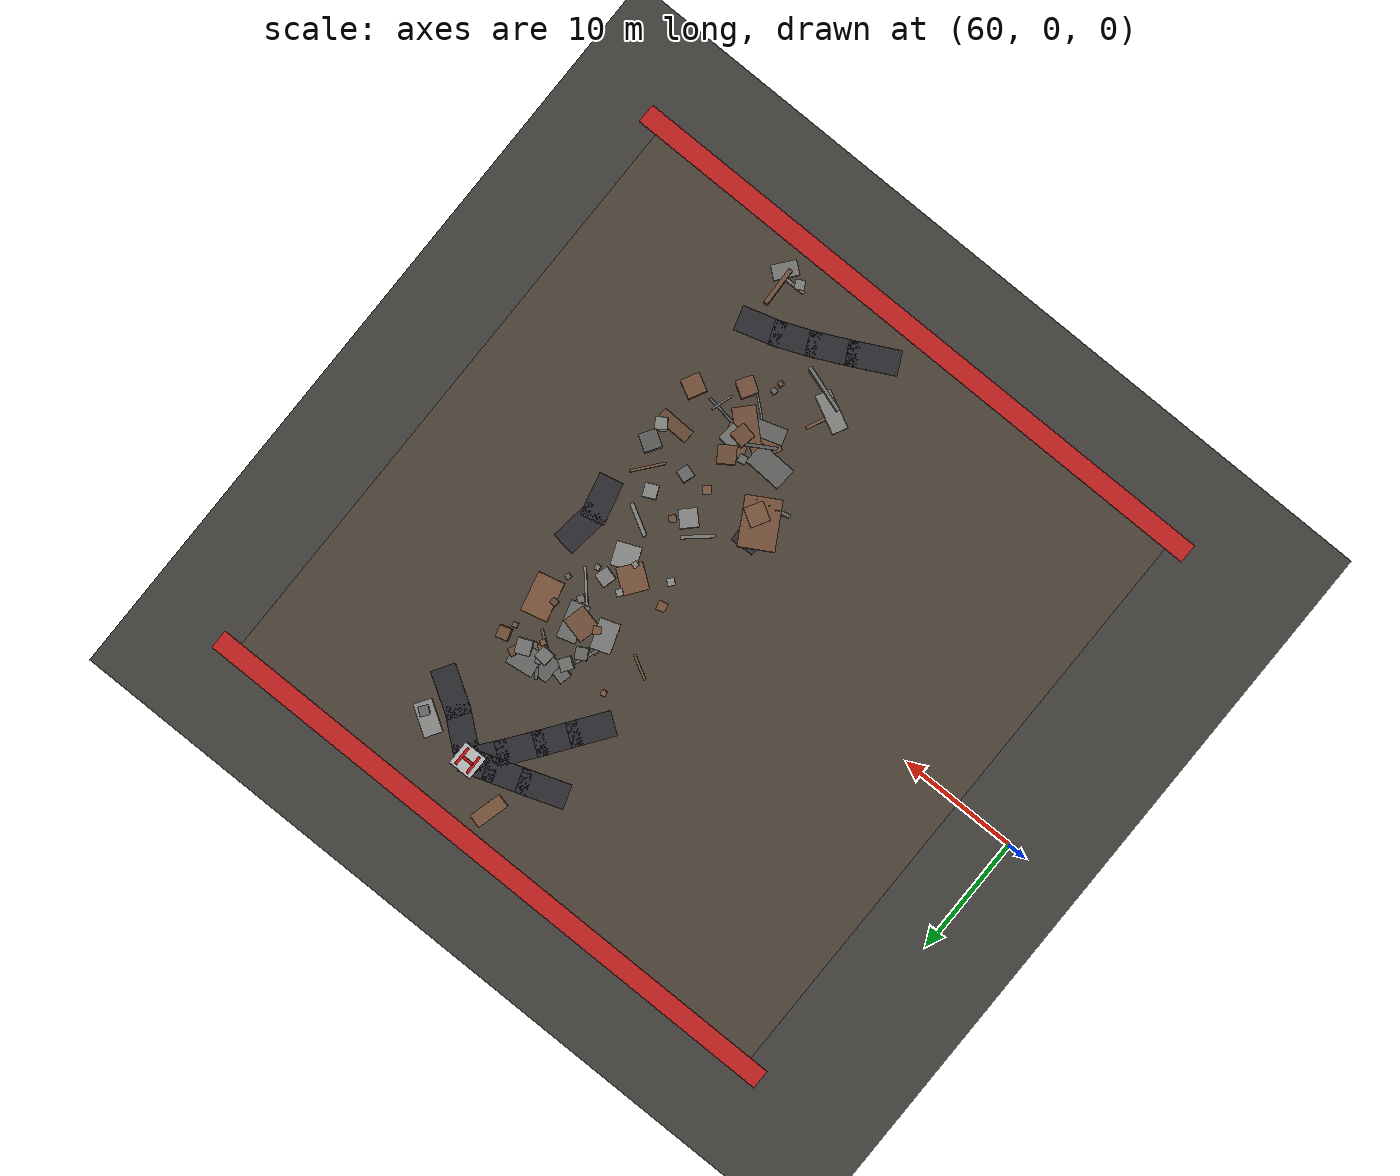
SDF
<sdf version="1.6">
 <world name="navitas_arena">
  <model name="ground_plane">
   <static>true</static>
   <link name="link">
    <collision name="collision">
     <geometry><plane><normal>0 0 1</normal><size>400 400</size></plane></geometry>
     <surface><friction><ode><mu>0.800</mu><mu2>0.800</mu2></ode></friction></surface>
    </collision>
    <visual name="visual">
     <cast_shadows>false</cast_shadows>
     <geometry><plane><normal>0 0 1</normal><size>400 400</size></plane></geometry>
     <material><ambient>0.300 0.290 0.270 1</ambient><diffuse>0.300 0.290 0.270 1</diffuse></material>
    </visual>
   </link>
  </model>
  <model name="gd_zor">
   <static>true</static>
   <pose>90.000 0.000 0.010 0 0 0.000</pose>
   <link name="link">
    <collision name="col"><geometry><box><size>50.000 50.000 0.020</size></box></geometry></collision>
    <visual name="vis">
     <geometry><box><size>50.000 50.000 0.020</size></box></geometry>
     <material><ambient>0.34 0.30 0.25 1</ambient><diffuse>0.34 0.30 0.25 1</diffuse></material>
    </visual>
   </link>
  </model>
  <model name="brd_zor_N">
   <static>true</static>
   <pose>90.000 25.800 0.040 0 0 0.000</pose>
   <link name="link">
    <collision name="col"><geometry><box><size>53.200 1.600 0.080</size></box></geometry></collision>
    <visual name="vis">
     <geometry><box><size>53.200 1.600 0.080</size></box></geometry>
     <material><ambient>0.85 0.15 0.15 1</ambient><diffuse>0.85 0.15 0.15 1</diffuse></material>
    </visual>
   </link>
  </model>
  <model name="brd_zor_S">
   <static>true</static>
   <pose>90.000 -25.800 0.040 0 0 0.000</pose>
   <link name="link">
    <collision name="col"><geometry><box><size>53.200 1.600 0.080</size></box></geometry></collision>
    <visual name="vis">
     <geometry><box><size>53.200 1.600 0.080</size></box></geometry>
     <material><ambient>0.85 0.15 0.15 1</ambient><diffuse>0.85 0.15 0.15 1</diffuse></material>
    </visual>
   </link>
  </model>
  <model name="road_zor_1_21">
   <static>true</static>
   <pose>90.234 19.029 0.040 0 0 0.337</pose>
   <link name="link">
    <collision name="col"><geometry><box><size>3.938 2.000 0.020</size></box></geometry></collision>
    <visual name="vis">
     <geometry><box><size>3.938 2.000 0.020</size></box></geometry>
     <material><ambient>0.20 0.20 0.22 1</ambient><diffuse>0.20 0.20 0.22 1</diffuse></material>
    </visual>
   </link>
  </model>
  <model name="road_zor_1_22">
   <static>true</static>
   <pose>92.952 19.963 0.040 0 0 0.324</pose>
   <link name="link">
    <collision name="col"><geometry><box><size>3.610 2.000 0.020</size></box></geometry></collision>
    <visual name="vis">
     <geometry><box><size>3.610 2.000 0.020</size></box></geometry>
     <material><ambient>0.20 0.20 0.22 1</ambient><diffuse>0.20 0.20 0.22 1</diffuse></material>
    </visual>
   </link>
  </model>
  <model name="road_zor_1_23">
   <static>true</static>
   <pose>95.131 20.697 0.040 0 0 0.326</pose>
   <link name="link">
    <collision name="col"><geometry><box><size>2.789 2.000 0.020</size></box></geometry></collision>
    <visual name="vis">
     <geometry><box><size>2.789 2.000 0.020</size></box></geometry>
     <material><ambient>0.20 0.20 0.22 1</ambient><diffuse>0.20 0.20 0.22 1</diffuse></material>
    </visual>
   </link>
  </model>
  <model name="road_zor_2_5">
   <static>true</static>
   <pose>90.161 -6.600 0.040 0 0 1.614</pose>
   <link name="link">
    <collision name="col"><geometry><box><size>3.703 2.000 0.020</size></box></geometry></collision>
    <visual name="vis">
     <geometry><box><size>3.703 2.000 0.020</size></box></geometry>
     <material><ambient>0.20 0.20 0.22 1</ambient><diffuse>0.20 0.20 0.22 1</diffuse></material>
    </visual>
   </link>
  </model>
  <model name="road_zor_2_13">
   <static>true</static>
   <pose>90.248 13.228 0.040 0 0 0.948</pose>
   <link name="link">
    <collision name="col"><geometry><box><size>3.601 2.000 0.020</size></box></geometry></collision>
    <visual name="vis">
     <geometry><box><size>3.601 2.000 0.020</size></box></geometry>
     <material><ambient>0.20 0.20 0.22 1</ambient><diffuse>0.20 0.20 0.22 1</diffuse></material>
    </visual>
   </link>
  </model>
  <model name="road_zor_2_14">
   <static>true</static>
   <pose>91.811 15.414 0.040 0 0 0.953</pose>
   <link name="link">
    <collision name="col"><geometry><box><size>3.574 2.000 0.020</size></box></geometry></collision>
    <visual name="vis">
     <geometry><box><size>3.574 2.000 0.020</size></box></geometry>
     <material><ambient>0.20 0.20 0.22 1</ambient><diffuse>0.20 0.20 0.22 1</diffuse></material>
    </visual>
   </link>
  </model>
  <model name="road_zor_2_15">
   <static>true</static>
   <pose>93.469 17.687 0.040 0 0 0.929</pose>
   <link name="link">
    <collision name="col"><geometry><box><size>3.855 2.000 0.020</size></box></geometry></collision>
    <visual name="vis">
     <geometry><box><size>3.855 2.000 0.020</size></box></geometry>
     <material><ambient>0.20 0.20 0.22 1</ambient><diffuse>0.20 0.20 0.22 1</diffuse></material>
    </visual>
   </link>
  </model>
  <model name="road_zor_2_16">
   <static>true</static>
   <pose>95.190 19.935 0.040 0 0 0.905</pose>
   <link name="link">
    <collision name="col"><geometry><box><size>3.607 2.000 0.020</size></box></geometry></collision>
    <visual name="vis">
     <geometry><box><size>3.607 2.000 0.020</size></box></geometry>
     <material><ambient>0.20 0.20 0.22 1</ambient><diffuse>0.20 0.20 0.22 1</diffuse></material>
    </visual>
   </link>
  </model>
  <model name="road_zor_3_0">
   <static>true</static>
   <pose>91.412 -22.266 0.040 0 0 0.474</pose>
   <link name="link">
    <collision name="col"><geometry><box><size>4.119 2.000 0.020</size></box></geometry></collision>
    <visual name="vis">
     <geometry><box><size>4.119 2.000 0.020</size></box></geometry>
     <material><ambient>0.20 0.20 0.22 1</ambient><diffuse>0.20 0.20 0.22 1</diffuse></material>
    </visual>
   </link>
  </model>
  <model name="road_zor_3_1">
   <static>true</static>
   <pose>94.240 -20.856 0.040 0 0 0.450</pose>
   <link name="link">
    <collision name="col"><geometry><box><size>4.001 2.000 0.020</size></box></geometry></collision>
    <visual name="vis">
     <geometry><box><size>4.001 2.000 0.020</size></box></geometry>
     <material><ambient>0.20 0.20 0.22 1</ambient><diffuse>0.20 0.20 0.22 1</diffuse></material>
    </visual>
   </link>
  </model>
  <model name="road_zor_3_2">
   <static>true</static>
   <pose>96.946 -19.642 0.040 0 0 0.391</pose>
   <link name="link">
    <collision name="col"><geometry><box><size>3.733 2.000 0.020</size></box></geometry></collision>
    <visual name="vis">
     <geometry><box><size>3.733 2.000 0.020</size></box></geometry>
     <material><ambient>0.20 0.20 0.22 1</ambient><diffuse>0.20 0.20 0.22 1</diffuse></material>
    </visual>
   </link>
  </model>
  <model name="road_zor_3_3">
   <static>true</static>
   <pose>99.575 -18.702 0.040 0 0 0.294</pose>
   <link name="link">
    <collision name="col"><geometry><box><size>3.657 2.000 0.020</size></box></geometry></collision>
    <visual name="vis">
     <geometry><box><size>3.657 2.000 0.020</size></box></geometry>
     <material><ambient>0.20 0.20 0.22 1</ambient><diffuse>0.20 0.20 0.22 1</diffuse></material>
    </visual>
   </link>
  </model>
  <model name="road_zor_3_12">
   <static>true</static>
   <pose>100.682 -0.883 0.040 0 0 1.804</pose>
   <link name="link">
    <collision name="col"><geometry><box><size>3.538 2.000 0.020</size></box></geometry></collision>
    <visual name="vis">
     <geometry><box><size>3.538 2.000 0.020</size></box></geometry>
     <material><ambient>0.20 0.20 0.22 1</ambient><diffuse>0.20 0.20 0.22 1</diffuse></material>
    </visual>
   </link>
  </model>
  <model name="road_zor_3_13">
   <static>true</static>
   <pose>100.561 1.800 0.040 0 0 1.441</pose>
   <link name="link">
    <collision name="col"><geometry><box><size>3.724 2.000 0.020</size></box></geometry></collision>
    <visual name="vis">
     <geometry><box><size>3.724 2.000 0.020</size></box></geometry>
     <material><ambient>0.20 0.20 0.22 1</ambient><diffuse>0.20 0.20 0.22 1</diffuse></material>
    </visual>
   </link>
  </model>
  <model name="road_zor_3_21">
   <static>true</static>
   <pose>100.322 17.729 0.040 0 0 2.587</pose>
   <link name="link">
    <collision name="col"><geometry><box><size>3.931 2.000 0.020</size></box></geometry></collision>
    <visual name="vis">
     <geometry><box><size>3.931 2.000 0.020</size></box></geometry>
     <material><ambient>0.20 0.20 0.22 1</ambient><diffuse>0.20 0.20 0.22 1</diffuse></material>
    </visual>
   </link>
  </model>
  <model name="road_zor_3_22">
   <static>true</static>
   <pose>97.890 19.461 0.040 0 0 2.457</pose>
   <link name="link">
    <collision name="col"><geometry><box><size>3.851 2.000 0.020</size></box></geometry></collision>
    <visual name="vis">
     <geometry><box><size>3.851 2.000 0.020</size></box></geometry>
     <material><ambient>0.20 0.20 0.22 1</ambient><diffuse>0.20 0.20 0.22 1</diffuse></material>
    </visual>
   </link>
  </model>
  <model name="road_zor_3_23">
   <static>true</static>
   <pose>96.387 20.697 0.040 0 0 2.444</pose>
   <link name="link">
    <collision name="col"><geometry><box><size>1.842 2.000 0.020</size></box></geometry></collision>
    <visual name="vis">
     <geometry><box><size>1.842 2.000 0.020</size></box></geometry>
     <material><ambient>0.20 0.20 0.22 1</ambient><diffuse>0.20 0.20 0.22 1</diffuse></material>
    </visual>
   </link>
  </model>
  <model name="blk_zor_2_0_0">
   <static>true</static>
   <pose>90.171 -7.022 0.600 0 0 2.094</pose>
   <link name="link">
    <collision name="col"><geometry><box><size>4.004 2.908 1.200</size></box></geometry></collision>
    <visual name="vis">
     <geometry><box><size>4.004 2.908 1.200</size></box></geometry>
     <material><ambient>0.52 0.36 0.26 1</ambient><diffuse>0.52 0.36 0.26 1</diffuse></material>
    </visual>
   </link>
  </model>
  <model name="blk_zor_2_0_2">
   <static>true</static>
   <pose>90.768 -7.376 0.742 0 0 2.613</pose>
   <link name="link">
    <collision name="col"><geometry><box><size>1.595 1.595 1.484</size></box></geometry></collision>
    <visual name="vis">
     <geometry><box><size>1.595 1.595 1.484</size></box></geometry>
     <material><ambient>0.54 0.38 0.27 1</ambient><diffuse>0.54 0.38 0.27 1</diffuse></material>
    </visual>
   </link>
  </model>
  <model name="blk_zor_2_0_5">
   <static>true</static>
   <pose>90.104 -8.480 0.600 0 0 0.259</pose>
   <link name="link">
    <collision name="col"><geometry><box><size>2.861 0.260 1.200</size></box></geometry></collision>
    <visual name="vis">
     <geometry><box><size>2.861 0.260 1.200</size></box></geometry>
     <material><ambient>0.45 0.45 0.44 1</ambient><diffuse>0.45 0.45 0.44 1</diffuse></material>
    </visual>
   </link>
  </model>
  <model name="deb_zor_0">
   <static>true</static>
   <pose>96.494 11.065 0.855 0 0 1.478</pose>
   <link name="link">
    <collision name="col"><geometry><box><size>1.065 1.065 1.710</size></box></geometry></collision>
    <visual name="vis">
     <geometry><box><size>1.065 1.065 1.710</size></box></geometry>
     <material><ambient>0.51 0.51 0.50 1</ambient><diffuse>0.51 0.51 0.50 1</diffuse></material>
    </visual>
   </link>
  </model>
  <model name="deb_zor_12">
   <static>true</static>
   <pose>93.525 7.361 0.093 0 0 1.458</pose>
   <link name="link">
    <collision name="col"><geometry><box><size>2.654 0.292 0.185</size></box></geometry></collision>
    <visual name="vis">
     <geometry><box><size>2.654 0.292 0.185</size></box></geometry>
     <material><ambient>0.55 0.38 0.27 1</ambient><diffuse>0.55 0.38 0.27 1</diffuse></material>
    </visual>
   </link>
  </model>
  <model name="deb_zor_15">
   <static>true</static>
   <pose>94.264 -9.990 0.193 0 0 1.758</pose>
   <link name="link">
    <collision name="col"><geometry><box><size>0.663 0.663 0.386</size></box></geometry></collision>
    <visual name="vis">
     <geometry><box><size>0.663 0.663 0.386</size></box></geometry>
     <material><ambient>0.46 0.46 0.45 1</ambient><diffuse>0.46 0.46 0.45 1</diffuse></material>
    </visual>
   </link>
  </model>
  <model name="deb_zor_17">
   <static>true</static>
   <pose>91.964 2.572 0.322 0 0 1.799</pose>
   <link name="link">
    <collision name="col"><geometry><box><size>0.721 0.721 0.645</size></box></geometry></collision>
    <visual name="vis">
     <geometry><box><size>0.721 0.721 0.645</size></box></geometry>
     <material><ambient>0.52 0.36 0.26 1</ambient><diffuse>0.52 0.36 0.26 1</diffuse></material>
    </visual>
   </link>
  </model>
  <model name="deb_zor_29">
   <static>true</static>
   <pose>93.202 -3.282 0.162 0 0 0.721</pose>
   <link name="link">
    <collision name="col"><geometry><box><size>2.700 0.278 0.323</size></box></geometry></collision>
    <visual name="vis">
     <geometry><box><size>2.700 0.278 0.323</size></box></geometry>
     <material><ambient>0.53 0.53 0.52 1</ambient><diffuse>0.53 0.53 0.52 1</diffuse></material>
    </visual>
   </link>
  </model>
  <model name="deb_zor_30">
   <static>true</static>
   <pose>100.537 -6.620 0.896 0 0 2.572</pose>
   <link name="link">
    <collision name="col"><geometry><box><size>1.440 1.440 1.793</size></box></geometry></collision>
    <visual name="vis">
     <geometry><box><size>1.440 1.440 1.793</size></box></geometry>
     <material><ambient>0.41 0.41 0.40 1</ambient><diffuse>0.41 0.41 0.40 1</diffuse></material>
    </visual>
   </link>
  </model>
  <model name="deb_zor_40">
   <static>true</static>
   <pose>95.846 -13.969 0.117 0 0 2.423</pose>
   <link name="link">
    <collision name="col"><geometry><box><size>2.237 0.153 0.233</size></box></geometry></collision>
    <visual name="vis">
     <geometry><box><size>2.237 0.153 0.233</size></box></geometry>
     <material><ambient>0.51 0.51 0.50 1</ambient><diffuse>0.51 0.51 0.50 1</diffuse></material>
    </visual>
   </link>
  </model>
  <model name="deb_zor_45">
   <static>true</static>
   <pose>92.608 0.690 0.208 0 0 2.422</pose>
   <link name="link">
    <collision name="col"><geometry><box><size>0.591 0.591 0.417</size></box></geometry></collision>
    <visual name="vis">
     <geometry><box><size>0.591 0.591 0.417</size></box></geometry>
     <material><ambient>0.61 0.61 0.59 1</ambient><diffuse>0.61 0.61 0.59 1</diffuse></material>
    </visual>
   </link>
  </model>
  <model name="deb_zor_46">
   <static>true</static>
   <pose>97.647 3.338 0.336 0 0 1.789</pose>
   <link name="link">
    <collision name="col"><geometry><box><size>0.422 0.422 0.673</size></box></geometry></collision>
    <visual name="vis">
     <geometry><box><size>0.422 0.422 0.673</size></box></geometry>
     <material><ambient>0.51 0.51 0.50 1</ambient><diffuse>0.51 0.51 0.50 1</diffuse></material>
    </visual>
   </link>
  </model>
  <model name="deb_zor_51">
   <static>true</static>
   <pose>99.794 -22.726 0.151 0 0 0.012</pose>
   <link name="link">
    <collision name="col"><geometry><box><size>2.329 0.249 0.302</size></box></geometry></collision>
    <visual name="vis">
     <geometry><box><size>2.329 0.249 0.302</size></box></geometry>
     <material><ambient>0.56 0.56 0.55 1</ambient><diffuse>0.56 0.56 0.55 1</diffuse></material>
    </visual>
   </link>
  </model>
  <model name="deb_zor_64">
   <static>true</static>
   <pose>95.522 -10.784 0.170 0 0 1.992</pose>
   <link name="link">
    <collision name="col"><geometry><box><size>2.480 1.759 0.341</size></box></geometry></collision>
    <visual name="vis">
     <geometry><box><size>2.480 1.759 0.341</size></box></geometry>
     <material><ambient>0.49 0.35 0.25 1</ambient><diffuse>0.49 0.35 0.25 1</diffuse></material>
    </visual>
   </link>
  </model>
  <model name="deb_zor_65">
   <static>true</static>
   <pose>90.374 7.221 0.185 0 0 2.642</pose>
   <link name="link">
    <collision name="col"><geometry><box><size>2.105 0.200 0.370</size></box></geometry></collision>
    <visual name="vis">
     <geometry><box><size>2.105 0.200 0.370</size></box></geometry>
     <material><ambient>0.55 0.38 0.27 1</ambient><diffuse>0.55 0.38 0.27 1</diffuse></material>
    </visual>
   </link>
  </model>
  <model name="deb_zor_67">
   <static>true</static>
   <pose>92.327 -10.892 0.160 0 0 3.099</pose>
   <link name="link">
    <collision name="col"><geometry><box><size>3.197 1.860 0.319</size></box></geometry></collision>
    <visual name="vis">
     <geometry><box><size>3.197 1.860 0.319</size></box></geometry>
     <material><ambient>0.43 0.43 0.42 1</ambient><diffuse>0.43 0.43 0.42 1</diffuse></material>
    </visual>
   </link>
  </model>
  <model name="deb_zor_72">
   <static>true</static>
   <pose>93.929 8.944 0.177 0 0 1.185</pose>
   <link name="link">
    <collision name="col"><geometry><box><size>2.383 0.234 0.353</size></box></geometry></collision>
    <visual name="vis">
     <geometry><box><size>2.383 0.234 0.353</size></box></geometry>
     <material><ambient>0.47 0.47 0.46 1</ambient><diffuse>0.47 0.47 0.46 1</diffuse></material>
    </visual>
   </link>
  </model>
  <model name="deb_zor_73">
   <static>true</static>
   <pose>91.401 -16.185 0.127 0 0 1.139</pose>
   <link name="link">
    <collision name="col"><geometry><box><size>2.882 0.239 0.253</size></box></geometry></collision>
    <visual name="vis">
     <geometry><box><size>2.882 0.239 0.253</size></box></geometry>
     <material><ambient>0.55 0.38 0.27 1</ambient><diffuse>0.55 0.38 0.27 1</diffuse></material>
    </visual>
   </link>
  </model>
  <model name="deb_zor_75">
   <static>true</static>
   <pose>96.974 10.389 0.157 0 0 2.505</pose>
   <link name="link">
    <collision name="col"><geometry><box><size>2.510 0.212 0.314</size></box></geometry></collision>
    <visual name="vis">
     <geometry><box><size>2.510 0.212 0.314</size></box></geometry>
     <material><ambient>0.42 0.42 0.41 1</ambient><diffuse>0.42 0.42 0.41 1</diffuse></material>
    </visual>
   </link>
  </model>
  <model name="deb_zor_84">
   <static>true</static>
   <pose>93.888 7.037 0.188 0 0 1.909</pose>
   <link name="link">
    <collision name="col"><geometry><box><size>2.426 1.655 0.376</size></box></geometry></collision>
    <visual name="vis">
     <geometry><box><size>2.426 1.655 0.376</size></box></geometry>
     <material><ambient>0.54 0.54 0.53 1</ambient><diffuse>0.54 0.54 0.53 1</diffuse></material>
    </visual>
   </link>
  </model>
  <model name="deb_zor_86">
   <static>true</static>
   <pose>94.429 9.169 0.699 0 0 0.501</pose>
   <link name="link">
    <collision name="col"><geometry><box><size>0.969 0.969 1.398</size></box></geometry></collision>
    <visual name="vis">
     <geometry><box><size>0.969 0.969 1.398</size></box></geometry>
     <material><ambient>0.45 0.45 0.44 1</ambient><diffuse>0.45 0.45 0.44 1</diffuse></material>
    </visual>
   </link>
  </model>
  <model name="deb_zor_89">
   <static>true</static>
   <pose>93.515 -11.810 0.145 0 0 0.996</pose>
   <link name="link">
    <collision name="col"><geometry><box><size>2.277 1.365 0.289</size></box></geometry></collision>
    <visual name="vis">
     <geometry><box><size>2.277 1.365 0.289</size></box></geometry>
     <material><ambient>0.50 0.35 0.25 1</ambient><diffuse>0.50 0.35 0.25 1</diffuse></material>
    </visual>
   </link>
  </model>
  <model name="deb_zor_91">
   <static>true</static>
   <pose>99.868 -8.741 0.186 0 0 3.113</pose>
   <link name="link">
    <collision name="col"><geometry><box><size>2.814 1.068 0.372</size></box></geometry></collision>
    <visual name="vis">
     <geometry><box><size>2.814 1.068 0.372</size></box></geometry>
     <material><ambient>0.46 0.32 0.23 1</ambient><diffuse>0.46 0.32 0.23 1</diffuse></material>
    </visual>
   </link>
  </model>
  <model name="deb_zor_96">
   <static>true</static>
   <pose>95.566 -3.121 0.218 0 0 2.310</pose>
   <link name="link">
    <collision name="col"><geometry><box><size>0.550 0.550 0.435</size></box></geometry></collision>
    <visual name="vis">
     <geometry><box><size>0.550 0.550 0.435</size></box></geometry>
     <material><ambient>0.50 0.35 0.25 1</ambient><diffuse>0.50 0.35 0.25 1</diffuse></material>
    </visual>
   </link>
  </model>
  <model name="deb_zor_97">
   <static>true</static>
   <pose>95.847 7.454 0.186 0 0 1.339</pose>
   <link name="link">
    <collision name="col"><geometry><box><size>1.882 2.090 0.373</size></box></geometry></collision>
    <visual name="vis">
     <geometry><box><size>1.882 2.090 0.373</size></box></geometry>
     <material><ambient>0.50 0.35 0.25 1</ambient><diffuse>0.50 0.35 0.25 1</diffuse></material>
    </visual>
   </link>
  </model>
  <model name="deb_zor_99">
   <static>true</static>
   <pose>100.414 20.376 0.228 0 0 2.577</pose>
   <link name="link">
    <collision name="col"><geometry><box><size>2.700 1.495 0.457</size></box></geometry></collision>
    <visual name="vis">
     <geometry><box><size>2.700 1.495 0.457</size></box></geometry>
     <material><ambient>0.61 0.61 0.60 1</ambient><diffuse>0.61 0.61 0.60 1</diffuse></material>
    </visual>
   </link>
  </model>
  <model name="deb_zor_100">
   <static>true</static>
   <pose>96.644 11.652 0.368 0 0 1.791</pose>
   <link name="link">
    <collision name="col"><geometry><box><size>0.527 0.527 0.736</size></box></geometry></collision>
    <visual name="vis">
     <geometry><box><size>0.527 0.527 0.736</size></box></geometry>
     <material><ambient>0.47 0.47 0.47 1</ambient><diffuse>0.47 0.47 0.47 1</diffuse></material>
    </visual>
   </link>
  </model>
  <model name="deb_zor_102">
   <static>true</static>
   <pose>97.743 -11.853 0.112 0 0 3.009</pose>
   <link name="link">
    <collision name="col"><geometry><box><size>2.836 0.200 0.223</size></box></geometry></collision>
    <visual name="vis">
     <geometry><box><size>2.836 0.200 0.223</size></box></geometry>
     <material><ambient>0.43 0.43 0.43 1</ambient><diffuse>0.43 0.43 0.43 1</diffuse></material>
    </visual>
   </link>
  </model>
  <model name="deb_zor_110">
   <static>true</static>
   <pose>99.737 10.681 0.229 0 0 1.799</pose>
   <link name="link">
    <collision name="col"><geometry><box><size>0.407 0.407 0.458</size></box></geometry></collision>
    <visual name="vis">
     <geometry><box><size>0.407 0.407 0.458</size></box></geometry>
     <material><ambient>0.40 0.40 0.39 1</ambient><diffuse>0.40 0.40 0.39 1</diffuse></material>
    </visual>
   </link>
  </model>
  <model name="deb_zor_113">
   <static>true</static>
   <pose>95.661 -15.504 0.338 0 0 1.314</pose>
   <link name="link">
    <collision name="col"><geometry><box><size>0.436 0.436 0.676</size></box></geometry></collision>
    <visual name="vis">
     <geometry><box><size>0.436 0.436 0.676</size></box></geometry>
     <material><ambient>0.43 0.43 0.42 1</ambient><diffuse>0.43 0.43 0.42 1</diffuse></material>
    </visual>
   </link>
  </model>
  <model name="deb_zor_115">
   <static>true</static>
   <pose>95.411 -9.475 0.621 0 0 0.593</pose>
   <link name="link">
    <collision name="col"><geometry><box><size>1.459 1.459 1.241</size></box></geometry></collision>
    <visual name="vis">
     <geometry><box><size>1.459 1.459 1.241</size></box></geometry>
     <material><ambient>0.48 0.34 0.24 1</ambient><diffuse>0.48 0.34 0.24 1</diffuse></material>
    </visual>
   </link>
  </model>
  <model name="deb_zor_116">
   <static>true</static>
   <pose>91.250 10.467 0.354 0 0 0.238</pose>
   <link name="link">
    <collision name="col"><geometry><box><size>0.439 0.439 0.708</size></box></geometry></collision>
    <visual name="vis">
     <geometry><box><size>0.439 0.439 0.708</size></box></geometry>
     <material><ambient>0.55 0.38 0.27 1</ambient><diffuse>0.55 0.38 0.27 1</diffuse></material>
    </visual>
   </link>
  </model>
  <model name="deb_zor_118">
   <static>true</static>
   <pose>95.385 -11.318 0.894 0 0 1.383</pose>
   <link name="link">
    <collision name="col"><geometry><box><size>1.332 1.332 1.787</size></box></geometry></collision>
    <visual name="vis">
     <geometry><box><size>1.332 1.332 1.787</size></box></geometry>
     <material><ambient>0.49 0.34 0.24 1</ambient><diffuse>0.49 0.34 0.24 1</diffuse></material>
    </visual>
   </link>
  </model>
  <model name="deb_zor_119">
   <static>true</static>
   <pose>95.840 -10.820 0.496 0 0 1.495</pose>
   <link name="link">
    <collision name="col"><geometry><box><size>1.548 1.548 0.993</size></box></geometry></collision>
    <visual name="vis">
     <geometry><box><size>1.548 1.548 0.993</size></box></geometry>
     <material><ambient>0.50 0.50 0.49 1</ambient><diffuse>0.50 0.50 0.49 1</diffuse></material>
    </visual>
   </link>
  </model>
  <model name="deb_zor_125">
   <static>true</static>
   <pose>92.355 22.947 0.164 0 0 1.315</pose>
   <link name="link">
    <collision name="col"><geometry><box><size>2.741 1.135 0.327</size></box></geometry></collision>
    <visual name="vis">
     <geometry><box><size>2.741 1.135 0.327</size></box></geometry>
     <material><ambient>0.53 0.37 0.26 1</ambient><diffuse>0.53 0.37 0.26 1</diffuse></material>
    </visual>
   </link>
  </model>
  <model name="deb_zor_141">
   <static>true</static>
   <pose>100.973 20.091 0.402 0 0 0.926</pose>
   <link name="link">
    <collision name="col"><geometry><box><size>0.792 0.792 0.804</size></box></geometry></collision>
    <visual name="vis">
     <geometry><box><size>0.792 0.792 0.804</size></box></geometry>
     <material><ambient>0.45 0.45 0.44 1</ambient><diffuse>0.45 0.45 0.44 1</diffuse></material>
    </visual>
   </link>
  </model>
  <model name="deb_zor_145">
   <static>true</static>
   <pose>97.444 -14.403 0.730 0 0 1.021</pose>
   <link name="link">
    <collision name="col"><geometry><box><size>1.416 1.416 1.460</size></box></geometry></collision>
    <visual name="vis">
     <geometry><box><size>1.416 1.416 1.460</size></box></geometry>
     <material><ambient>0.51 0.36 0.26 1</ambient><diffuse>0.51 0.36 0.26 1</diffuse></material>
    </visual>
   </link>
  </model>
  <model name="deb_zor_146">
   <static>true</static>
   <pose>99.254 -23.029 0.215 0 0 0.490</pose>
   <link name="link">
    <collision name="col"><geometry><box><size>0.768 0.768 0.430</size></box></geometry></collision>
    <visual name="vis">
     <geometry><box><size>0.768 0.768 0.430</size></box></geometry>
     <material><ambient>0.55 0.55 0.53 1</ambient><diffuse>0.55 0.55 0.53 1</diffuse></material>
    </visual>
   </link>
  </model>
  <model name="deb_zor_171">
   <static>true</static>
   <pose>96.458 11.682 0.137 0 0 3.107</pose>
   <link name="link">
    <collision name="col"><geometry><box><size>2.662 1.903 0.273</size></box></geometry></collision>
    <visual name="vis">
     <geometry><box><size>2.662 1.903 0.273</size></box></geometry>
     <material><ambient>0.43 0.43 0.42 1</ambient><diffuse>0.43 0.43 0.42 1</diffuse></material>
    </visual>
   </link>
  </model>
  <model name="deb_zor_173">
   <static>true</static>
   <pose>94.232 -12.814 0.215 0 0 0.305</pose>
   <link name="link">
    <collision name="col"><geometry><box><size>3.024 1.311 0.431</size></box></geometry></collision>
    <visual name="vis">
     <geometry><box><size>3.024 1.311 0.431</size></box></geometry>
     <material><ambient>0.44 0.44 0.43 1</ambient><diffuse>0.44 0.44 0.43 1</diffuse></material>
    </visual>
   </link>
  </model>
  <model name="deb_zor_188">
   <static>true</static>
   <pose>94.583 11.340 0.677 0 0 2.906</pose>
   <link name="link">
    <collision name="col"><geometry><box><size>1.024 1.024 1.354</size></box></geometry></collision>
    <visual name="vis">
     <geometry><box><size>1.024 1.024 1.354</size></box></geometry>
     <material><ambient>0.45 0.45 0.44 1</ambient><diffuse>0.45 0.45 0.44 1</diffuse></material>
    </visual>
   </link>
  </model>
  <model name="deb_zor_189">
   <static>true</static>
   <pose>94.657 7.074 0.230 0 0 0.591</pose>
   <link name="link">
    <collision name="col"><geometry><box><size>0.631 0.631 0.460</size></box></geometry></collision>
    <visual name="vis">
     <geometry><box><size>0.631 0.631 0.460</size></box></geometry>
     <material><ambient>0.54 0.37 0.27 1</ambient><diffuse>0.54 0.37 0.27 1</diffuse></material>
    </visual>
   </link>
  </model>
  <model name="deb_zor_202">
   <static>true</static>
   <pose>94.896 -6.479 0.231 0 0 2.251</pose>
   <link name="link">
    <collision name="col"><geometry><box><size>0.701 0.701 0.462</size></box></geometry></collision>
    <visual name="vis">
     <geometry><box><size>0.701 0.701 0.462</size></box></geometry>
     <material><ambient>0.54 0.38 0.27 1</ambient><diffuse>0.54 0.38 0.27 1</diffuse></material>
    </visual>
   </link>
  </model>
  <model name="deb_zor_204">
   <static>true</static>
   <pose>100.829 -23.179 0.211 0 0 0.897</pose>
   <link name="link">
    <collision name="col"><geometry><box><size>2.043 1.209 0.422</size></box></geometry></collision>
    <visual name="vis">
     <geometry><box><size>2.043 1.209 0.422</size></box></geometry>
     <material><ambient>0.52 0.52 0.51 1</ambient><diffuse>0.52 0.52 0.51 1</diffuse></material>
    </visual>
   </link>
  </model>
  <model name="deb_zor_210">
   <static>true</static>
   <pose>96.490 1.317 0.162 0 0 0.397</pose>
   <link name="link">
    <collision name="col"><geometry><box><size>1.999 1.912 0.323</size></box></geometry></collision>
    <visual name="vis">
     <geometry><box><size>1.999 1.912 0.323</size></box></geometry>
     <material><ambient>0.61 0.61 0.60 1</ambient><diffuse>0.61 0.61 0.60 1</diffuse></material>
    </visual>
   </link>
  </model>
  <model name="deb_zor_213">
   <static>true</static>
   <pose>99.467 7.713 0.229 0 0 1.812</pose>
   <link name="link">
    <collision name="col"><geometry><box><size>3.225 2.193 0.457</size></box></geometry></collision>
    <visual name="vis">
     <geometry><box><size>3.225 2.193 0.457</size></box></geometry>
     <material><ambient>0.55 0.38 0.27 1</ambient><diffuse>0.55 0.38 0.27 1</diffuse></material>
    </visual>
   </link>
  </model>
  <model name="deb_zor_215">
   <static>true</static>
   <pose>95.033 2.338 0.181 0 0 2.506</pose>
   <link name="link">
    <collision name="col"><geometry><box><size>2.187 2.117 0.362</size></box></geometry></collision>
    <visual name="vis">
     <geometry><box><size>2.187 2.117 0.362</size></box></geometry>
     <material><ambient>0.53 0.37 0.27 1</ambient><diffuse>0.53 0.37 0.27 1</diffuse></material>
    </visual>
   </link>
  </model>
  <model name="deb_zor_217">
   <static>true</static>
   <pose>95.630 -12.116 0.223 0 0 2.393</pose>
   <link name="link">
    <collision name="col"><geometry><box><size>3.055 1.859 0.446</size></box></geometry></collision>
    <visual name="vis">
     <geometry><box><size>3.055 1.859 0.446</size></box></geometry>
     <material><ambient>0.50 0.35 0.25 1</ambient><diffuse>0.50 0.35 0.25 1</diffuse></material>
    </visual>
   </link>
  </model>
  <model name="deb_zor_222">
   <static>true</static>
   <pose>94.844 10.530 0.834 0 0 0.974</pose>
   <link name="link">
    <collision name="col"><geometry><box><size>1.009 1.009 1.667</size></box></geometry></collision>
    <visual name="vis">
     <geometry><box><size>1.009 1.009 1.667</size></box></geometry>
     <material><ambient>0.49 0.49 0.48 1</ambient><diffuse>0.49 0.49 0.48 1</diffuse></material>
    </visual>
   </link>
  </model>
  <model name="deb_zor_225">
   <static>true</static>
   <pose>95.129 3.787 0.356 0 0 0.928</pose>
   <link name="link">
    <collision name="col"><geometry><box><size>0.544 0.544 0.712</size></box></geometry></collision>
    <visual name="vis">
     <geometry><box><size>0.544 0.544 0.712</size></box></geometry>
     <material><ambient>0.60 0.60 0.58 1</ambient><diffuse>0.60 0.60 0.58 1</diffuse></material>
    </visual>
   </link>
  </model>
  <model name="deb_zor_227">
   <static>true</static>
   <pose>97.102 6.015 0.318 0 0 0.979</pose>
   <link name="link">
    <collision name="col"><geometry><box><size>0.557 0.557 0.636</size></box></geometry></collision>
    <visual name="vis">
     <geometry><box><size>0.557 0.557 0.636</size></box></geometry>
     <material><ambient>0.49 0.49 0.48 1</ambient><diffuse>0.49 0.49 0.48 1</diffuse></material>
    </visual>
   </link>
  </model>
  <model name="deb_zor_228">
   <static>true</static>
   <pose>99.985 11.648 0.850 0 0 1.864</pose>
   <link name="link">
    <collision name="col"><geometry><box><size>0.961 0.961 1.700</size></box></geometry></collision>
    <visual name="vis">
     <geometry><box><size>0.961 0.961 1.700</size></box></geometry>
     <material><ambient>0.50 0.35 0.25 1</ambient><diffuse>0.50 0.35 0.25 1</diffuse></material>
    </visual>
   </link>
  </model>
  <model name="deb_zor_235">
   <static>true</static>
   <pose>98.582 12.309 0.391 0 0 1.174</pose>
   <link name="link">
    <collision name="col"><geometry><box><size>0.688 0.688 0.781</size></box></geometry></collision>
    <visual name="vis">
     <geometry><box><size>0.688 0.688 0.781</size></box></geometry>
     <material><ambient>0.47 0.33 0.24 1</ambient><diffuse>0.47 0.33 0.24 1</diffuse></material>
    </visual>
   </link>
  </model>
  <model name="deb_zor_239">
   <static>true</static>
   <pose>93.798 -11.619 0.232 0 0 0.541</pose>
   <link name="link">
    <collision name="col"><geometry><box><size>2.584 0.256 0.464</size></box></geometry></collision>
    <visual name="vis">
     <geometry><box><size>2.584 0.256 0.464</size></box></geometry>
     <material><ambient>0.41 0.41 0.41 1</ambient><diffuse>0.41 0.41 0.41 1</diffuse></material>
    </visual>
   </link>
  </model>
  <model name="deb_zor_240">
   <static>true</static>
   <pose>100.650 -11.942 0.505 0 0 2.667</pose>
   <link name="link">
    <collision name="col"><geometry><box><size>1.558 1.558 1.011</size></box></geometry></collision>
    <visual name="vis">
     <geometry><box><size>1.558 1.558 1.011</size></box></geometry>
     <material><ambient>0.52 0.36 0.26 1</ambient><diffuse>0.52 0.36 0.26 1</diffuse></material>
    </visual>
   </link>
  </model>
  <model name="deb_zor_248">
   <static>true</static>
   <pose>97.250 10.368 0.397 0 0 1.054</pose>
   <link name="link">
    <collision name="col"><geometry><box><size>0.455 0.455 0.794</size></box></geometry></collision>
    <visual name="vis">
     <geometry><box><size>0.455 0.455 0.794</size></box></geometry>
     <material><ambient>0.54 0.38 0.27 1</ambient><diffuse>0.54 0.38 0.27 1</diffuse></material>
    </visual>
   </link>
  </model>
  <model name="deb_zor_252">
   <static>true</static>
   <pose>96.452 7.729 0.167 0 0 1.856</pose>
   <link name="link">
    <collision name="col"><geometry><box><size>3.037 1.553 0.334</size></box></geometry></collision>
    <visual name="vis">
     <geometry><box><size>3.037 1.553 0.334</size></box></geometry>
     <material><ambient>0.48 0.48 0.47 1</ambient><diffuse>0.48 0.48 0.47 1</diffuse></material>
    </visual>
   </link>
  </model>
  <model name="deb_zor_254">
   <static>true</static>
   <pose>99.473 -4.992 0.237 0 0 0.892</pose>
   <link name="link">
    <collision name="col"><geometry><box><size>2.874 0.182 0.475</size></box></geometry></collision>
    <visual name="vis">
     <geometry><box><size>2.874 0.182 0.475</size></box></geometry>
     <material><ambient>0.54 0.38 0.27 1</ambient><diffuse>0.54 0.38 0.27 1</diffuse></material>
    </visual>
   </link>
  </model>
  <model name="deb_zor_256">
   <static>true</static>
   <pose>98.206 -12.356 0.215 0 0 1.268</pose>
   <link name="link">
    <collision name="col"><geometry><box><size>1.832 0.152 0.430</size></box></geometry></collision>
    <visual name="vis">
     <geometry><box><size>1.832 0.152 0.430</size></box></geometry>
     <material><ambient>0.52 0.52 0.51 1</ambient><diffuse>0.52 0.52 0.51 1</diffuse></material>
    </visual>
   </link>
  </model>
  <model name="deb_zor_259">
   <static>true</static>
   <pose>95.612 -16.246 0.331 0 0 1.382</pose>
   <link name="link">
    <collision name="col"><geometry><box><size>0.421 0.421 0.662</size></box></geometry></collision>
    <visual name="vis">
     <geometry><box><size>0.421 0.421 0.662</size></box></geometry>
     <material><ambient>0.45 0.32 0.23 1</ambient><diffuse>0.45 0.32 0.23 1</diffuse></material>
    </visual>
   </link>
  </model>
  <model name="deb_zor_271">
   <static>true</static>
   <pose>96.362 12.236 0.140 0 0 2.160</pose>
   <link name="link">
    <collision name="col"><geometry><box><size>1.670 0.263 0.280</size></box></geometry></collision>
    <visual name="vis">
     <geometry><box><size>1.670 0.263 0.280</size></box></geometry>
     <material><ambient>0.41 0.41 0.40 1</ambient><diffuse>0.41 0.41 0.40 1</diffuse></material>
    </visual>
   </link>
  </model>
  <model name="deb_zor_273">
   <static>true</static>
   <pose>95.536 1.389 0.342 0 0 1.243</pose>
   <link name="link">
    <collision name="col"><geometry><box><size>0.462 0.462 0.683</size></box></geometry></collision>
    <visual name="vis">
     <geometry><box><size>0.462 0.462 0.683</size></box></geometry>
     <material><ambient>0.57 0.57 0.56 1</ambient><diffuse>0.57 0.57 0.56 1</diffuse></material>
    </visual>
   </link>
  </model>
  <model name="deb_zor_284">
   <static>true</static>
   <pose>98.151 -3.695 0.599 0 0 2.004</pose>
   <link name="link">
    <collision name="col"><geometry><box><size>1.081 1.081 1.198</size></box></geometry></collision>
    <visual name="vis">
     <geometry><box><size>1.081 1.081 1.198</size></box></geometry>
     <material><ambient>0.59 0.59 0.58 1</ambient><diffuse>0.59 0.59 0.58 1</diffuse></material>
    </visual>
   </link>
  </model>
  <model name="deb_zor_287">
   <static>true</static>
   <pose>98.512 7.450 0.370 0 0 2.997</pose>
   <link name="link">
    <collision name="col"><geometry><box><size>0.552 0.552 0.739</size></box></geometry></collision>
    <visual name="vis">
     <geometry><box><size>0.552 0.552 0.739</size></box></geometry>
     <material><ambient>0.46 0.32 0.23 1</ambient><diffuse>0.46 0.32 0.23 1</diffuse></material>
    </visual>
   </link>
  </model>
  <model name="deb_zor_306">
   <static>true</static>
   <pose>97.544 12.194 0.179 0 0 0.129</pose>
   <link name="link">
    <collision name="col"><geometry><box><size>2.275 2.022 0.358</size></box></geometry></collision>
    <visual name="vis">
     <geometry><box><size>2.275 2.022 0.358</size></box></geometry>
     <material><ambient>0.46 0.46 0.45 1</ambient><diffuse>0.46 0.46 0.45 1</diffuse></material>
    </visual>
   </link>
  </model>
  <model name="deb_zor_311">
   <static>true</static>
   <pose>100.724 -8.150 0.891 0 0 2.193</pose>
   <link name="link">
    <collision name="col"><geometry><box><size>0.955 0.955 1.783</size></box></geometry></collision>
    <visual name="vis">
     <geometry><box><size>0.955 0.955 1.783</size></box></geometry>
     <material><ambient>0.59 0.59 0.57 1</ambient><diffuse>0.59 0.59 0.57 1</diffuse></material>
    </visual>
   </link>
  </model>
  <model name="deb_zor_312">
   <static>true</static>
   <pose>94.607 -3.900 0.838 0 0 0.791</pose>
   <link name="link">
    <collision name="col"><geometry><box><size>1.468 1.468 1.677</size></box></geometry></collision>
    <visual name="vis">
     <geometry><box><size>1.468 1.468 1.677</size></box></geometry>
     <material><ambient>0.59 0.59 0.58 1</ambient><diffuse>0.59 0.59 0.58 1</diffuse></material>
    </visual>
   </link>
  </model>
  <model name="deb_zor_320">
   <static>true</static>
   <pose>96.682 3.538 0.737 0 0 2.878</pose>
   <link name="link">
    <collision name="col"><geometry><box><size>1.149 1.149 1.474</size></box></geometry></collision>
    <visual name="vis">
     <geometry><box><size>1.149 1.149 1.474</size></box></geometry>
     <material><ambient>0.56 0.56 0.55 1</ambient><diffuse>0.56 0.56 0.55 1</diffuse></material>
    </visual>
   </link>
  </model>
  <model name="deb_zor_321">
   <static>true</static>
   <pose>96.906 -6.378 0.588 0 0 1.266</pose>
   <link name="link">
    <collision name="col"><geometry><box><size>1.010 1.010 1.176</size></box></geometry></collision>
    <visual name="vis">
     <geometry><box><size>1.010 1.010 1.176</size></box></geometry>
     <material><ambient>0.45 0.45 0.44 1</ambient><diffuse>0.45 0.45 0.44 1</diffuse></material>
    </visual>
   </link>
  </model>
  <model name="deb_zor_322">
   <static>true</static>
   <pose>98.943 5.287 0.188 0 0 1.340</pose>
   <link name="link">
    <collision name="col"><geometry><box><size>0.421 0.421 0.376</size></box></geometry></collision>
    <visual name="vis">
     <geometry><box><size>0.421 0.421 0.376</size></box></geometry>
     <material><ambient>0.42 0.42 0.42 1</ambient><diffuse>0.42 0.42 0.42 1</diffuse></material>
    </visual>
   </link>
  </model>
  <model name="deb_zor_324">
   <static>true</static>
   <pose>91.291 -17.032 0.220 0 0 2.679</pose>
   <link name="link">
    <collision name="col"><geometry><box><size>3.229 1.277 0.441</size></box></geometry></collision>
    <visual name="vis">
     <geometry><box><size>3.229 1.277 0.441</size></box></geometry>
     <material><ambient>0.58 0.58 0.57 1</ambient><diffuse>0.58 0.58 0.57 1</diffuse></material>
    </visual>
   </link>
  </model>
  <model name="deb_zor_329">
   <static>true</static>
   <pose>98.138 11.523 0.703 0 0 1.974</pose>
   <link name="link">
    <collision name="col"><geometry><box><size>1.209 1.209 1.405</size></box></geometry></collision>
    <visual name="vis">
     <geometry><box><size>1.209 1.209 1.405</size></box></geometry>
     <material><ambient>0.51 0.51 0.50 1</ambient><diffuse>0.51 0.51 0.50 1</diffuse></material>
    </visual>
   </link>
  </model>
  <model name="deb_zor_332">
   <static>true</static>
   <pose>97.439 4.997 0.235 0 0 2.298</pose>
   <link name="link">
    <collision name="col"><geometry><box><size>2.967 0.199 0.470</size></box></geometry></collision>
    <visual name="vis">
     <geometry><box><size>2.967 0.199 0.470</size></box></geometry>
     <material><ambient>0.58 0.58 0.57 1</ambient><diffuse>0.58 0.58 0.57 1</diffuse></material>
    </visual>
   </link>
  </model>
  <model name="deb_zor_334">
   <static>true</static>
   <pose>97.011 10.783 0.253 0 0 0.800</pose>
   <link name="link">
    <collision name="col"><geometry><box><size>0.624 0.624 0.505</size></box></geometry></collision>
    <visual name="vis">
     <geometry><box><size>0.624 0.624 0.505</size></box></geometry>
     <material><ambient>0.53 0.37 0.26 1</ambient><diffuse>0.53 0.37 0.26 1</diffuse></material>
    </visual>
   </link>
  </model>
  <model name="chic_zor_0">
   <static>true</static>
   <pose>92.810 -17.974 0.600 0 0 2.835</pose>
   <link name="link">
    <collision name="col"><geometry><box><size>3.911 0.289 1.200</size></box></geometry></collision>
    <visual name="vis">
     <geometry><box><size>3.911 0.289 1.200</size></box></geometry>
     <material><ambient>0.50 0.50 0.49 1</ambient><diffuse>0.50 0.50 0.49 1</diffuse></material>
    </visual>
   </link>
  </model>
  <model name="chic_zor_1">
   <static>true</static>
   <pose>100.412 -21.806 0.600 0 0 1.608</pose>
   <link name="link">
    <collision name="col"><geometry><box><size>3.149 0.352 1.200</size></box></geometry></collision>
    <visual name="vis">
     <geometry><box><size>3.149 0.352 1.200</size></box></geometry>
     <material><ambient>0.51 0.36 0.26 1</ambient><diffuse>0.51 0.36 0.26 1</diffuse></material>
    </visual>
   </link>
  </model>
  <model name="chic_zor_6">
   <static>true</static>
   <pose>97.494 -1.406 0.600 0 0 2.634</pose>
   <link name="link">
    <collision name="col"><geometry><box><size>2.689 0.319 1.200</size></box></geometry></collision>
    <visual name="vis">
     <geometry><box><size>2.689 0.319 1.200</size></box></geometry>
     <material><ambient>0.57 0.57 0.56 1</ambient><diffuse>0.57 0.57 0.56 1</diffuse></material>
    </visual>
   </link>
  </model>
  <model name="hbpad_zor">
   <static>true</static>
   <pose>96.026 21.000 0.070 0 0 0.000</pose>
   <link name="link">
    <collision name="col"><geometry><box><size>2.000 2.000 0.040</size></box></geometry></collision>
    <visual name="vis">
     <geometry><box><size>2.000 2.000 0.040</size></box></geometry>
     <material><ambient>0.82 0.82 0.82 1</ambient><diffuse>0.82 0.82 0.82 1</diffuse></material>
    </visual>
   </link>
  </model>
  <model name="H_zor_l">
   <static>true</static>
   <pose>95.476 21.000 0.100 0 0 0.000</pose>
   <link name="link">
    <collision name="col"><geometry><box><size>0.220 1.550 0.100</size></box></geometry></collision>
    <visual name="vis">
     <geometry><box><size>0.220 1.550 0.100</size></box></geometry>
     <material><ambient>0.90 0.05 0.05 1</ambient><diffuse>0.90 0.05 0.05 1</diffuse></material>
    </visual>
   </link>
  </model>
  <model name="H_zor_r">
   <static>true</static>
   <pose>96.576 21.000 0.100 0 0 0.000</pose>
   <link name="link">
    <collision name="col"><geometry><box><size>0.220 1.550 0.100</size></box></geometry></collision>
    <visual name="vis">
     <geometry><box><size>0.220 1.550 0.100</size></box></geometry>
     <material><ambient>0.90 0.05 0.05 1</ambient><diffuse>0.90 0.05 0.05 1</diffuse></material>
    </visual>
   </link>
  </model>
  <model name="H_zor_b">
   <static>true</static>
   <pose>96.026 21.000 0.100 0 0 0.000</pose>
   <link name="link">
    <collision name="col"><geometry><box><size>1.100 0.220 0.100</size></box></geometry></collision>
    <visual name="vis">
     <geometry><box><size>1.100 0.220 0.100</size></box></geometry>
     <material><ambient>0.90 0.05 0.05 1</ambient><diffuse>0.90 0.05 0.05 1</diffuse></material>
    </visual>
   </link>
  </model>
 </world>
</sdf>
